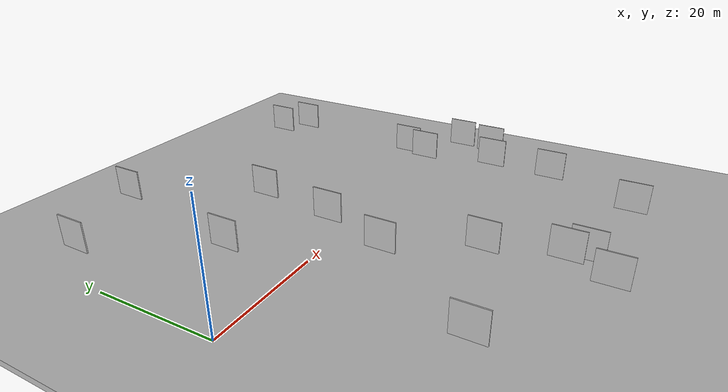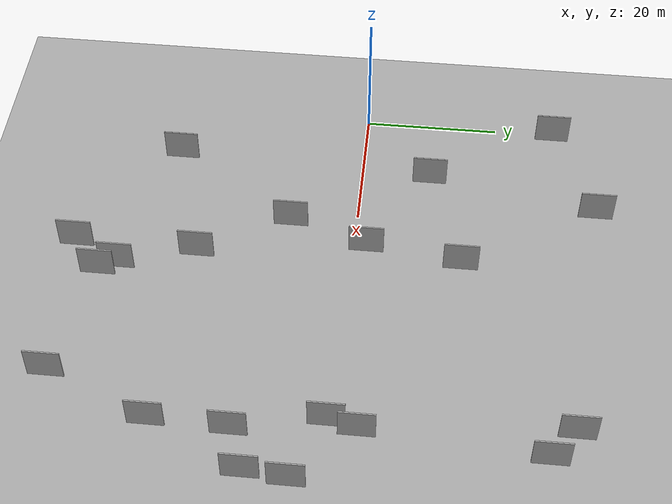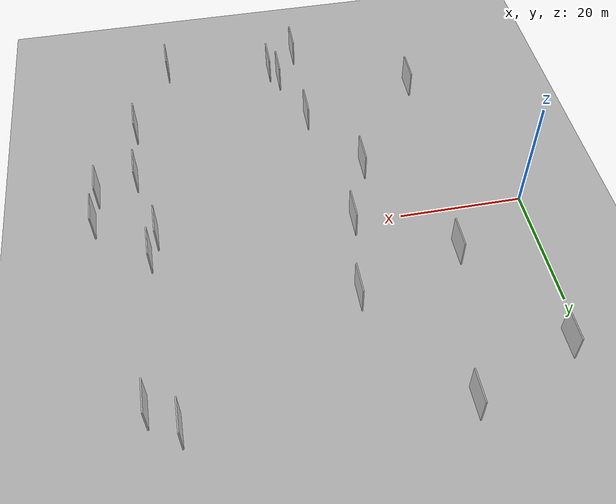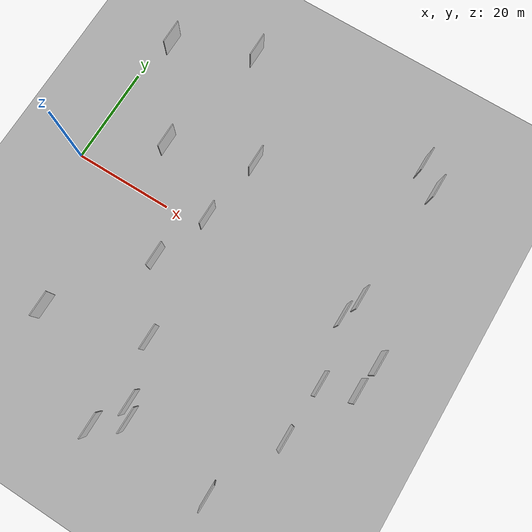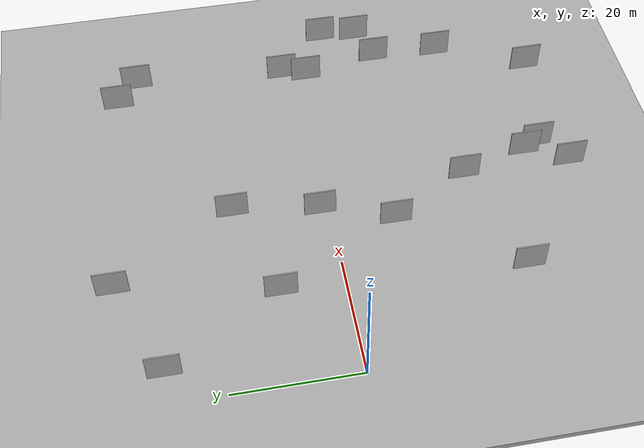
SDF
<?xml version="1.0" encoding="utf-8"?>

<sdf version="1.6">

   <world name="default">

      <gui fullscreen="0">

         <camera name="user_camera">

            <pose>-15 0 4.57585 0 0 0</pose>

            <view_controller>orbit</view_controller>

         </camera>

      </gui>

      <scene>

         <sky>

           <clouds>

             <speed>12</speed>

           </clouds>

         </sky>

         <ambient>0.4 0.4 0.4 1</ambient>

         <background>0.7 0.7 0.7 1</background>

         <shadows>1</shadows>

      </scene>

      <gravity>0 0 -9.8066</gravity>

      <magnetic_field>6e-06 2.3e-05 -4.2e-05</magnetic_field>

      <physics default="0" name="default_physics" type="ode">

         <ode>

            <solver>

               <type>quick</type>

               <iters>10</iters>

               <sor>1.0</sor>

               <use_dynamic_moi_rescaling>0</use_dynamic_moi_rescaling>

            </solver>

            <constraints>

               <cfm>0</cfm>

               <erp>0.2</erp>

               <contact_max_correcting_vel>100</contact_max_correcting_vel>

               <contact_surface_layer>0.001</contact_surface_layer>

            </constraints>

         </ode>

         <max_step_size>0.004</max_step_size>

         <real_time_factor>1</real_time_factor>

         <real_time_update_rate>250</real_time_update_rate>

      </physics>

      <light name="sun" type="directional">

         <cast_shadows>1</cast_shadows>

         <pose>0 0 10 0 0 0</pose>

         <diffuse>0.8 0.8 0.8 1</diffuse>

         <specular>0.2 0.2 0.2 1</specular>

         <attenuation>

            <range>1000</range>

            <constant>0.9</constant>

            <linear>0.01</linear>

            <quadratic>0.001</quadratic>

         </attenuation>

         <direction>-0.5 0.1 -0.9</direction>

      </light>

      <include>

         <name>ground_plane_1</name>

         <uri>model://HANNAS_ground_plane</uri>

         <pose>0 0 0  0 0 0</pose>

      </include>

      <include>

         <name>ground_plane_2</name>

         <uri>model://HANNAS_ground_plane</uri>

         <pose>100 0 0  0 0 0</pose>

      </include>

      <model name="HANNAS_wall_1">

         <static>1</static>

         <pose frame="">36.3104 -35.7027 2.5 0.000000 0.000000 1.570796</pose>

         <link name="link">

            <pose frame="">0 0 2.50 0 0 0</pose>

            <collision name="collision">

               <geometry>

                  <box>

                     <size>5.00 0.2 5.00</size>

                  </box>

               </geometry>

               <max_contacts>10</max_contacts>

               <surface>

                  <contact>

                     <ode/>

                  </contact>

                  <bounce/>

                  <friction>

                     <torsional>

                        <ode/>

                     </torsional>

                     <ode/>

                  </friction>

               </surface>

            </collision>

            <visual name="visual">

               <cast_shadows>0</cast_shadows>

               <geometry>

                  <box>

                     <size>5.00 0.2 5.00</size>

                  </box>

               </geometry>

               <material>

                  <script>

                     <uri>model://HANNAS_wall/materials/scripts</uri>

                     <uri>model://HANNAS_wall/materials/textures</uri>

                     <name>vrc/HANNAS_wall</name>

                  </script>

               </material>

            </visual>

            <self_collide>0</self_collide>

            <enable_wind>0</enable_wind>

            <kinematic>0</kinematic>

         </link>

      </model>

      <model name="HANNAS_wall_2">

         <static>1</static>

         <pose frame="">61.2040 -13.2495 2.5 0.000000 0.000000 1.570796</pose>

         <link name="link">

            <pose frame="">0 0 2.50 0 0 0</pose>

            <collision name="collision">

               <geometry>

                  <box>

                     <size>5.00 0.2 5.00</size>

                  </box>

               </geometry>

               <max_contacts>10</max_contacts>

               <surface>

                  <contact>

                     <ode/>

                  </contact>

                  <bounce/>

                  <friction>

                     <torsional>

                        <ode/>

                     </torsional>

                     <ode/>

                  </friction>

               </surface>

            </collision>

            <visual name="visual">

               <cast_shadows>0</cast_shadows>

               <geometry>

                  <box>

                     <size>5.00 0.2 5.00</size>

                  </box>

               </geometry>

               <material>

                  <script>

                     <uri>model://HANNAS_wall/materials/scripts</uri>

                     <uri>model://HANNAS_wall/materials/textures</uri>

                     <name>vrc/HANNAS_wall</name>

                  </script>

               </material>

            </visual>

            <self_collide>0</self_collide>

            <enable_wind>0</enable_wind>

            <kinematic>0</kinematic>

         </link>

      </model>

      <model name="HANNAS_wall_3">

         <static>1</static>

         <pose frame="">31.3674 -39.7693 2.5 0.000000 0.000000 1.570796</pose>

         <link name="link">

            <pose frame="">0 0 2.50 0 0 0</pose>

            <collision name="collision">

               <geometry>

                  <box>

                     <size>5.00 0.2 5.00</size>

                  </box>

               </geometry>

               <max_contacts>10</max_contacts>

               <surface>

                  <contact>

                     <ode/>

                  </contact>

                  <bounce/>

                  <friction>

                     <torsional>

                        <ode/>

                     </torsional>

                     <ode/>

                  </friction>

               </surface>

            </collision>

            <visual name="visual">

               <cast_shadows>0</cast_shadows>

               <geometry>

                  <box>

                     <size>5.00 0.2 5.00</size>

                  </box>

               </geometry>

               <material>

                  <script>

                     <uri>model://HANNAS_wall/materials/scripts</uri>

                     <uri>model://HANNAS_wall/materials/textures</uri>

                     <name>vrc/HANNAS_wall</name>

                  </script>

               </material>

            </visual>

            <self_collide>0</self_collide>

            <enable_wind>0</enable_wind>

            <kinematic>0</kinematic>

         </link>

      </model>

      <model name="HANNAS_wall_4">

         <static>1</static>

         <pose frame="">30.4552 15.5134 2.5 0.000000 0.000000 1.570796</pose>

         <link name="link">

            <pose frame="">0 0 2.50 0 0 0</pose>

            <collision name="collision">

               <geometry>

                  <box>

                     <size>5.00 0.2 5.00</size>

                  </box>

               </geometry>

               <max_contacts>10</max_contacts>

               <surface>

                  <contact>

                     <ode/>

                  </contact>

                  <bounce/>

                  <friction>

                     <torsional>

                        <ode/>

                     </torsional>

                     <ode/>

                  </friction>

               </surface>

            </collision>

            <visual name="visual">

               <cast_shadows>0</cast_shadows>

               <geometry>

                  <box>

                     <size>5.00 0.2 5.00</size>

                  </box>

               </geometry>

               <material>

                  <script>

                     <uri>model://HANNAS_wall/materials/scripts</uri>

                     <uri>model://HANNAS_wall/materials/textures</uri>

                     <name>vrc/HANNAS_wall</name>

                  </script>

               </material>

            </visual>

            <self_collide>0</self_collide>

            <enable_wind>0</enable_wind>

            <kinematic>0</kinematic>

         </link>

      </model>

      <model name="HANNAS_wall_5">

         <static>1</static>

         <pose frame="">31.6495 -22.2131 2.5 0.000000 0.000000 1.570796</pose>

         <link name="link">

            <pose frame="">0 0 2.50 0 0 0</pose>

            <collision name="collision">

               <geometry>

                  <box>

                     <size>5.00 0.2 5.00</size>

                  </box>

               </geometry>

               <max_contacts>10</max_contacts>

               <surface>

                  <contact>

                     <ode/>

                  </contact>

                  <bounce/>

                  <friction>

                     <torsional>

                        <ode/>

                     </torsional>

                     <ode/>

                  </friction>

               </surface>

            </collision>

            <visual name="visual">

               <cast_shadows>0</cast_shadows>

               <geometry>

                  <box>

                     <size>5.00 0.2 5.00</size>

                  </box>

               </geometry>

               <material>

                  <script>

                     <uri>model://HANNAS_wall/materials/scripts</uri>

                     <uri>model://HANNAS_wall/materials/textures</uri>

                     <name>vrc/HANNAS_wall</name>

                  </script>

               </material>

            </visual>

            <self_collide>0</self_collide>

            <enable_wind>0</enable_wind>

            <kinematic>0</kinematic>

         </link>

      </model>

      <model name="HANNAS_wall_6">

         <static>1</static>

         <pose frame="">61.6665 28.2213 2.5 0.000000 0.000000 1.570796</pose>

         <link name="link">

            <pose frame="">0 0 2.50 0 0 0</pose>

            <collision name="collision">

               <geometry>

                  <box>

                     <size>5.00 0.2 5.00</size>

                  </box>

               </geometry>

               <max_contacts>10</max_contacts>

               <surface>

                  <contact>

                     <ode/>

                  </contact>

                  <bounce/>

                  <friction>

                     <torsional>

                        <ode/>

                     </torsional>

                     <ode/>

                  </friction>

               </surface>

            </collision>

            <visual name="visual">

               <cast_shadows>0</cast_shadows>

               <geometry>

                  <box>

                     <size>5.00 0.2 5.00</size>

                  </box>

               </geometry>

               <material>

                  <script>

                     <uri>model://HANNAS_wall/materials/scripts</uri>

                     <uri>model://HANNAS_wall/materials/textures</uri>

                     <name>vrc/HANNAS_wall</name>

                  </script>

               </material>

            </visual>

            <self_collide>0</self_collide>

            <enable_wind>0</enable_wind>

            <kinematic>0</kinematic>

         </link>

      </model>

      <model name="HANNAS_wall_7">

         <static>1</static>

         <pose frame="">24.5263 -9.4457 2.5 0.000000 0.000000 1.570796</pose>

         <link name="link">

            <pose frame="">0 0 2.50 0 0 0</pose>

            <collision name="collision">

               <geometry>

                  <box>

                     <size>5.00 0.2 5.00</size>

                  </box>

               </geometry>

               <max_contacts>10</max_contacts>

               <surface>

                  <contact>

                     <ode/>

                  </contact>

                  <bounce/>

                  <friction>

                     <torsional>

                        <ode/>

                     </torsional>

                     <ode/>

                  </friction>

               </surface>

            </collision>

            <visual name="visual">

               <cast_shadows>0</cast_shadows>

               <geometry>

                  <box>

                     <size>5.00 0.2 5.00</size>

                  </box>

               </geometry>

               <material>

                  <script>

                     <uri>model://HANNAS_wall/materials/scripts</uri>

                     <uri>model://HANNAS_wall/materials/textures</uri>

                     <name>vrc/HANNAS_wall</name>

                  </script>

               </material>

            </visual>

            <self_collide>0</self_collide>

            <enable_wind>0</enable_wind>

            <kinematic>0</kinematic>

         </link>

      </model>

      <model name="HANNAS_wall_8">

         <static>1</static>

         <pose frame="">18.8282 34.8507 2.5 0.000000 0.000000 1.570796</pose>

         <link name="link">

            <pose frame="">0 0 2.50 0 0 0</pose>

            <collision name="collision">

               <geometry>

                  <box>

                     <size>5.00 0.2 5.00</size>

                  </box>

               </geometry>

               <max_contacts>10</max_contacts>

               <surface>

                  <contact>

                     <ode/>

                  </contact>

                  <bounce/>

                  <friction>

                     <torsional>

                        <ode/>

                     </torsional>

                     <ode/>

                  </friction>

               </surface>

            </collision>

            <visual name="visual">

               <cast_shadows>0</cast_shadows>

               <geometry>

                  <box>

                     <size>5.00 0.2 5.00</size>

                  </box>

               </geometry>

               <material>

                  <script>

                     <uri>model://HANNAS_wall/materials/scripts</uri>

                     <uri>model://HANNAS_wall/materials/textures</uri>

                     <name>vrc/HANNAS_wall</name>

                  </script>

               </material>

            </visual>

            <self_collide>0</self_collide>

            <enable_wind>0</enable_wind>

            <kinematic>0</kinematic>

         </link>

      </model>

      <model name="HANNAS_wall_9">

         <static>1</static>

         <pose frame="">14.0759 10.2100 2.5 0.000000 0.000000 1.570796</pose>

         <link name="link">

            <pose frame="">0 0 2.50 0 0 0</pose>

            <collision name="collision">

               <geometry>

                  <box>

                     <size>5.00 0.2 5.00</size>

                  </box>

               </geometry>

               <max_contacts>10</max_contacts>

               <surface>

                  <contact>

                     <ode/>

                  </contact>

                  <bounce/>

                  <friction>

                     <torsional>

                        <ode/>

                     </torsional>

                     <ode/>

                  </friction>

               </surface>

            </collision>

            <visual name="visual">

               <cast_shadows>0</cast_shadows>

               <geometry>

                  <box>

                     <size>5.00 0.2 5.00</size>

                  </box>

               </geometry>

               <material>

                  <script>

                     <uri>model://HANNAS_wall/materials/scripts</uri>

                     <uri>model://HANNAS_wall/materials/textures</uri>

                     <name>vrc/HANNAS_wall</name>

                  </script>

               </material>

            </visual>

            <self_collide>0</self_collide>

            <enable_wind>0</enable_wind>

            <kinematic>0</kinematic>

         </link>

      </model>

      <model name="HANNAS_wall_10">

         <static>1</static>

         <pose frame="">12.3881 -27.4805 2.5 0.000000 0.000000 1.570796</pose>

         <link name="link">

            <pose frame="">0 0 2.50 0 0 0</pose>

            <collision name="collision">

               <geometry>

                  <box>

                     <size>5.00 0.2 5.00</size>

                  </box>

               </geometry>

               <max_contacts>10</max_contacts>

               <surface>

                  <contact>

                     <ode/>

                  </contact>

                  <bounce/>

                  <friction>

                     <torsional>

                        <ode/>

                     </torsional>

                     <ode/>

                  </friction>

               </surface>

            </collision>

            <visual name="visual">

               <cast_shadows>0</cast_shadows>

               <geometry>

                  <box>

                     <size>5.00 0.2 5.00</size>

                  </box>

               </geometry>

               <material>

                  <script>

                     <uri>model://HANNAS_wall/materials/scripts</uri>

                     <uri>model://HANNAS_wall/materials/textures</uri>

                     <name>vrc/HANNAS_wall</name>

                  </script>

               </material>

            </visual>

            <self_collide>0</self_collide>

            <enable_wind>0</enable_wind>

            <kinematic>0</kinematic>

         </link>

      </model>

      <model name="HANNAS_wall_11">

         <static>1</static>

         <pose frame="">60.7731 -24.2000 2.5 0.000000 0.000000 1.570796</pose>

         <link name="link">

            <pose frame="">0 0 2.50 0 0 0</pose>

            <collision name="collision">

               <geometry>

                  <box>

                     <size>5.00 0.2 5.00</size>

                  </box>

               </geometry>

               <max_contacts>10</max_contacts>

               <surface>

                  <contact>

                     <ode/>

                  </contact>

                  <bounce/>

                  <friction>

                     <torsional>

                        <ode/>

                     </torsional>

                     <ode/>

                  </friction>

               </surface>

            </collision>

            <visual name="visual">

               <cast_shadows>0</cast_shadows>

               <geometry>

                  <box>

                     <size>5.00 0.2 5.00</size>

                  </box>

               </geometry>

               <material>

                  <script>

                     <uri>model://HANNAS_wall/materials/scripts</uri>

                     <uri>model://HANNAS_wall/materials/textures</uri>

                     <name>vrc/HANNAS_wall</name>

                  </script>

               </material>

            </visual>

            <self_collide>0</self_collide>

            <enable_wind>0</enable_wind>

            <kinematic>0</kinematic>

         </link>

      </model>

      <model name="HANNAS_wall_12">

         <static>1</static>

         <pose frame="">67.3725 -10.8613 2.5 0.000000 0.000000 1.570796</pose>

         <link name="link">

            <pose frame="">0 0 2.50 0 0 0</pose>

            <collision name="collision">

               <geometry>

                  <box>

                     <size>5.00 0.2 5.00</size>

                  </box>

               </geometry>

               <max_contacts>10</max_contacts>

               <surface>

                  <contact>

                     <ode/>

                  </contact>

                  <bounce/>

                  <friction>

                     <torsional>

                        <ode/>

                     </torsional>

                     <ode/>

                  </friction>

               </surface>

            </collision>

            <visual name="visual">

               <cast_shadows>0</cast_shadows>

               <geometry>

                  <box>

                     <size>5.00 0.2 5.00</size>

                  </box>

               </geometry>

               <material>

                  <script>

                     <uri>model://HANNAS_wall/materials/scripts</uri>

                     <uri>model://HANNAS_wall/materials/textures</uri>

                     <name>vrc/HANNAS_wall</name>

                  </script>

               </material>

            </visual>

            <self_collide>0</self_collide>

            <enable_wind>0</enable_wind>

            <kinematic>0</kinematic>

         </link>

      </model>

      <model name="HANNAS_wall_13">

         <static>1</static>

         <pose frame="">3.3044 28.4544 2.5 0.000000 0.000000 1.570796</pose>

         <link name="link">

            <pose frame="">0 0 2.50 0 0 0</pose>

            <collision name="collision">

               <geometry>

                  <box>

                     <size>5.00 0.2 5.00</size>

                  </box>

               </geometry>

               <max_contacts>10</max_contacts>

               <surface>

                  <contact>

                     <ode/>

                  </contact>

                  <bounce/>

                  <friction>

                     <torsional>

                        <ode/>

                     </torsional>

                     <ode/>

                  </friction>

               </surface>

            </collision>

            <visual name="visual">

               <cast_shadows>0</cast_shadows>

               <geometry>

                  <box>

                     <size>5.00 0.2 5.00</size>

                  </box>

               </geometry>

               <material>

                  <script>

                     <uri>model://HANNAS_wall/materials/scripts</uri>

                     <uri>model://HANNAS_wall/materials/textures</uri>

                     <name>vrc/HANNAS_wall</name>

                  </script>

               </material>

            </visual>

            <self_collide>0</self_collide>

            <enable_wind>0</enable_wind>

            <kinematic>0</kinematic>

         </link>

      </model>

      <model name="HANNAS_wall_14">

         <static>1</static>

         <pose frame="">59.8037 3.2569 2.5 0.000000 0.000000 1.570796</pose>

         <link name="link">

            <pose frame="">0 0 2.50 0 0 0</pose>

            <collision name="collision">

               <geometry>

                  <box>

                     <size>5.00 0.2 5.00</size>

                  </box>

               </geometry>

               <max_contacts>10</max_contacts>

               <surface>

                  <contact>

                     <ode/>

                  </contact>

                  <bounce/>

                  <friction>

                     <torsional>

                        <ode/>

                     </torsional>

                     <ode/>

                  </friction>

               </surface>

            </collision>

            <visual name="visual">

               <cast_shadows>0</cast_shadows>

               <geometry>

                  <box>

                     <size>5.00 0.2 5.00</size>

                  </box>

               </geometry>

               <material>

                  <script>

                     <uri>model://HANNAS_wall/materials/scripts</uri>

                     <uri>model://HANNAS_wall/materials/textures</uri>

                     <name>vrc/HANNAS_wall</name>

                  </script>

               </material>

            </visual>

            <self_collide>0</self_collide>

            <enable_wind>0</enable_wind>

            <kinematic>0</kinematic>

         </link>

      </model>

      <model name="HANNAS_wall_15">

         <static>1</static>

         <pose frame="">34.8770 -33.2016 2.5 0.000000 0.000000 1.570796</pose>

         <link name="link">

            <pose frame="">0 0 2.50 0 0 0</pose>

            <collision name="collision">

               <geometry>

                  <box>

                     <size>5.00 0.2 5.00</size>

                  </box>

               </geometry>

               <max_contacts>10</max_contacts>

               <surface>

                  <contact>

                     <ode/>

                  </contact>

                  <bounce/>

                  <friction>

                     <torsional>

                        <ode/>

                     </torsional>

                     <ode/>

                  </friction>

               </surface>

            </collision>

            <visual name="visual">

               <cast_shadows>0</cast_shadows>

               <geometry>

                  <box>

                     <size>5.00 0.2 5.00</size>

                  </box>

               </geometry>

               <material>

                  <script>

                     <uri>model://HANNAS_wall/materials/scripts</uri>

                     <uri>model://HANNAS_wall/materials/textures</uri>

                     <name>vrc/HANNAS_wall</name>

                  </script>

               </material>

            </visual>

            <self_collide>0</self_collide>

            <enable_wind>0</enable_wind>

            <kinematic>0</kinematic>

         </link>

      </model>

      <model name="HANNAS_wall_16">

         <static>1</static>

         <pose frame="">28.4363 1.8822 2.5 0.000000 0.000000 1.570796</pose>

         <link name="link">

            <pose frame="">0 0 2.50 0 0 0</pose>

            <collision name="collision">

               <geometry>

                  <box>

                     <size>5.00 0.2 5.00</size>

                  </box>

               </geometry>

               <max_contacts>10</max_contacts>

               <surface>

                  <contact>

                     <ode/>

                  </contact>

                  <bounce/>

                  <friction>

                     <torsional>

                        <ode/>

                     </torsional>

                     <ode/>

                  </friction>

               </surface>

            </collision>

            <visual name="visual">

               <cast_shadows>0</cast_shadows>

               <geometry>

                  <box>

                     <size>5.00 0.2 5.00</size>

                  </box>

               </geometry>

               <material>

                  <script>

                     <uri>model://HANNAS_wall/materials/scripts</uri>

                     <uri>model://HANNAS_wall/materials/textures</uri>

                     <name>vrc/HANNAS_wall</name>

                  </script>

               </material>

            </visual>

            <self_collide>0</self_collide>

            <enable_wind>0</enable_wind>

            <kinematic>0</kinematic>

         </link>

      </model>

      <model name="HANNAS_wall_17">

         <static>1</static>

         <pose frame="">68.0469 -4.9070 2.5 0.000000 0.000000 1.570796</pose>

         <link name="link">

            <pose frame="">0 0 2.50 0 0 0</pose>

            <collision name="collision">

               <geometry>

                  <box>

                     <size>5.00 0.2 5.00</size>

                  </box>

               </geometry>

               <max_contacts>10</max_contacts>

               <surface>

                  <contact>

                     <ode/>

                  </contact>

                  <bounce/>

                  <friction>

                     <torsional>

                        <ode/>

                     </torsional>

                     <ode/>

                  </friction>

               </surface>

            </collision>

            <visual name="visual">

               <cast_shadows>0</cast_shadows>

               <geometry>

                  <box>

                     <size>5.00 0.2 5.00</size>

                  </box>

               </geometry>

               <material>

                  <script>

                     <uri>model://HANNAS_wall/materials/scripts</uri>

                     <uri>model://HANNAS_wall/materials/textures</uri>

                     <name>vrc/HANNAS_wall</name>

                  </script>

               </material>

            </visual>

            <self_collide>0</self_collide>

            <enable_wind>0</enable_wind>

            <kinematic>0</kinematic>

         </link>

      </model>

      <model name="HANNAS_wall_18">

         <static>1</static>

         <pose frame="">57.4006 31.6871 2.5 0.000000 0.000000 1.570796</pose>

         <link name="link">

            <pose frame="">0 0 2.50 0 0 0</pose>

            <collision name="collision">

               <geometry>

                  <box>

                     <size>5.00 0.2 5.00</size>

                  </box>

               </geometry>

               <max_contacts>10</max_contacts>

               <surface>

                  <contact>

                     <ode/>

                  </contact>

                  <bounce/>

                  <friction>

                     <torsional>

                        <ode/>

                     </torsional>

                     <ode/>

                  </friction>

               </surface>

            </collision>

            <visual name="visual">

               <cast_shadows>0</cast_shadows>

               <geometry>

                  <box>

                     <size>5.00 0.2 5.00</size>

                  </box>

               </geometry>

               <material>

                  <script>

                     <uri>model://HANNAS_wall/materials/scripts</uri>

                     <uri>model://HANNAS_wall/materials/textures</uri>

                     <name>vrc/HANNAS_wall</name>

                  </script>

               </material>

            </visual>

            <self_collide>0</self_collide>

            <enable_wind>0</enable_wind>

            <kinematic>0</kinematic>

         </link>

      </model>

      <model name="HANNAS_wall_19">

         <static>1</static>

         <pose frame="">58.6123 -0.7966 2.5 0.000000 0.000000 1.570796</pose>

         <link name="link">

            <pose frame="">0 0 2.50 0 0 0</pose>

            <collision name="collision">

               <geometry>

                  <box>

                     <size>5.00 0.2 5.00</size>

                  </box>

               </geometry>

               <max_contacts>10</max_contacts>

               <surface>

                  <contact>

                     <ode/>

                  </contact>

                  <bounce/>

                  <friction>

                     <torsional>

                        <ode/>

                     </torsional>

                     <ode/>

                  </friction>

               </surface>

            </collision>

            <visual name="visual">

               <cast_shadows>0</cast_shadows>

               <geometry>

                  <box>

                     <size>5.00 0.2 5.00</size>

                  </box>

               </geometry>

               <material>

                  <script>

                     <uri>model://HANNAS_wall/materials/scripts</uri>

                     <uri>model://HANNAS_wall/materials/textures</uri>

                     <name>vrc/HANNAS_wall</name>

                  </script>

               </material>

            </visual>

            <self_collide>0</self_collide>

            <enable_wind>0</enable_wind>

            <kinematic>0</kinematic>

         </link>

      </model>

      <model name="HANNAS_wall_20">

         <static>1</static>

         <pose frame="">54.4174 -38.9367 2.5 0.000000 0.000000 1.570796</pose>

         <link name="link">

            <pose frame="">0 0 2.50 0 0 0</pose>

            <collision name="collision">

               <geometry>

                  <box>

                     <size>5.00 0.2 5.00</size>

                  </box>

               </geometry>

               <max_contacts>10</max_contacts>

               <surface>

                  <contact>

                     <ode/>

                  </contact>

                  <bounce/>

                  <friction>

                     <torsional>

                        <ode/>

                     </torsional>

                     <ode/>

                  </friction>

               </surface>

            </collision>

            <visual name="visual">

               <cast_shadows>0</cast_shadows>

               <geometry>

                  <box>

                     <size>5.00 0.2 5.00</size>

                  </box>

               </geometry>

               <material>

                  <script>

                     <uri>model://HANNAS_wall/materials/scripts</uri>

                     <uri>model://HANNAS_wall/materials/textures</uri>

                     <name>vrc/HANNAS_wall</name>

                  </script>

               </material>

            </visual>

            <self_collide>0</self_collide>

            <enable_wind>0</enable_wind>

            <kinematic>0</kinematic>

         </link>

      </model>

   </world>

</sdf>

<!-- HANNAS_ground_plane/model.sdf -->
<sdf version="1.4">
<model name="HANNAS_ground_plane">
  <static>true</static>
    <link name="link">
      <collision name="collision">
        <geometry>
          <plane>
            <normal>0 0 1</normal>
            <size>1000 1000</size>
          </plane>
        </geometry>
        <surface>
          <friction>
            <ode>
              <mu>100</mu>
              <mu2>50</mu2>
            </ode>
          </friction>
        </surface>
      </collision>
      <visual name="visual">
        <cast_shadows>false</cast_shadows>
        <geometry>
          <plane>
            <normal>0 0 1</normal>
            <size>1000 1000</size>
          </plane>
        </geometry>
        <material>
          <script>
            <uri>model://HANNAS_ground_plane/materials/scripts/HANNAS_ground_plane.material</uri>
	    <uri>model://HANNAS_ground_plane/materials/textures</uri>
            <name>HANNASGroundPlane/Image</name>
          </script>
        </material>
      </visual>
    </link>
  </model>
</sdf>
